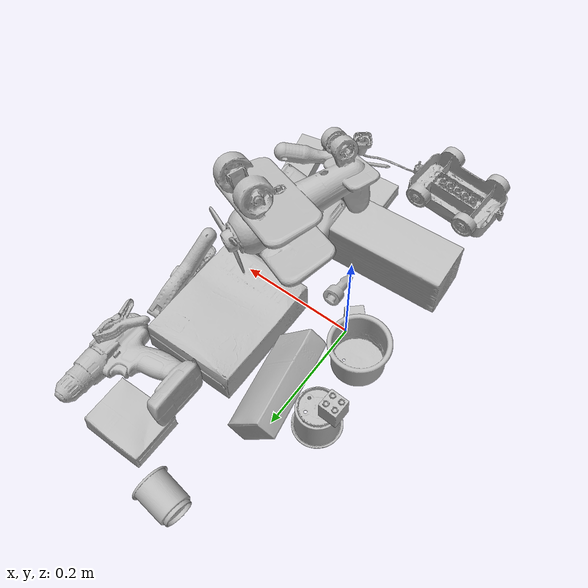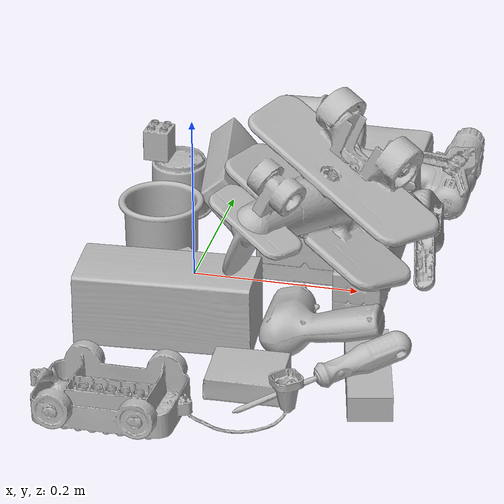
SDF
<sdf version="1.4">
  <world name="default">
    <light name="light1" type="point">
      <pose>0 0 1 0 0 0</pose>
      <diffuse>3 3 3 1</diffuse>
      <specular>3 3 3 1</specular>
    </light>
    <light name="light2" type="point">
      <pose>0 0.5 2 0 0 0</pose>
      <diffuse>1 1 1 1</diffuse>
      <specular>1 1 1 1</specular>
    </light>
    <light name="light3" type="point">
      <pose>0 0.5 2 0 0 0</pose>
      <diffuse>3 3 3 1</diffuse>
      <specular>3 3 3 1</specular>
    </light>
    <scene>
      <ambient>0.7 0.7 0.7</ambient>
    </scene>
    <model name="box21">
      <link name="link_box21">
        <collision name="default">
          <geometry>
            <mesh>
              <uri>model://cracker_box/collision_meshes/collision.obj</uri>
              <scale>1.0 1.0 1.0</scale>
            </mesh>
          </geometry>
          <surface>
            <friction>
              <ode>
                <mu>0.5</mu>
                <mu2>0.5</mu2>
              </ode>
            </friction>
          <contact>
        <ode>
            <max_vel>0</max_vel>
            <min_depth>0.0001</min_depth>
            <kp>1e8</kp>
        </ode>
    </contact></surface>
        </collision>
        <visual name="default">
          <geometry>
            <mesh>
              <uri>model://cracker_box/visual_meshes/visual.dae</uri>
              <scale>1.0 1.0 1.0</scale>
            </mesh>
          </geometry>
        </visual>
        <inertial>
          <mass>2.2869980335235596</mass>
          <pose>0.0009464151225984097 0.0002543425071053207 -0.0017029535956680775 -0.0003162075418873318 -0.011106487737663914 0.0025467956997025456</pose>
          <inertia>
            <ixx>0.005817102</ixx>
            <iyy>0.009605178</iyy>
            <izz>0.013707472</izz>
            <ixy>0</ixy>
            <ixz>0</ixz>
            <iyz>0</iyz>
          </inertia>
        </inertial>
      </link>
      <pose>0.1564667671918869 0.10583481937646866 0.03638385236263275 -0.014030705175937505 -0.005022031076776199 1.575477912374083</pose>
    </model>
    <model name="box22">
      <link name="link_box22">
        <collision name="default">
          <geometry>
            <mesh>
              <uri>model://pudding_box/collision_meshes/collision.obj</uri>
              <scale>1.0 1.0 1.0</scale>
            </mesh>
          </geometry>
          <surface>
            <friction>
              <ode>
                <mu>0.5</mu>
                <mu2>0.5</mu2>
              </ode>
            </friction>
          <contact>
        <ode>
            <max_vel>0</max_vel>
            <min_depth>0.0001</min_depth>
            <kp>1e8</kp>
        </ode>
    </contact></surface>
        </collision>
        <visual name="default">
          <geometry>
            <mesh>
              <uri>model://pudding_box/visual_meshes/visual.dae</uri>
              <scale>1.0 1.0 1.0</scale>
            </mesh>
          </geometry>
        </visual>
        <inertial>
          <mass>0.5370154976844788</mass>
          <pose>0.0004894821904599667 0.0008067885646596551 -0.0005188827635720372 0.005213101796859606 -0.006603800100757192 0.02007981956729938</pose>
          <inertia>
            <ixx>0.0006070684</ixx>
            <iyy>0.00040843996</iyy>
            <izz>0.00089649507</izz>
            <ixy>0</ixy>
            <ixz>0</ixz>
            <iyz>0</iyz>
          </inertia>
        </inertial>
      </link>
      <pose>0.16746918857097626 0.33233699202537537 0.0186605304479599 3.133983714169295 -0.026953440304749655 1.5698405303009404</pose>
    </model>
    <model name="box23">
      <link name="link_box23">
        <collision name="default">
          <geometry>
            <mesh>
              <uri>model://jenga/collision_meshes/collision.obj</uri>
              <scale>1.0 1.0 1.0</scale>
            </mesh>
          </geometry>
          <surface>
            <friction>
              <ode>
                <mu>0.5</mu>
                <mu2>0.5</mu2>
              </ode>
            </friction>
          <contact>
        <ode>
            <max_vel>0</max_vel>
            <min_depth>0.0001</min_depth>
            <kp>1e8</kp>
        </ode>
    </contact></surface>
        </collision>
        <visual name="default">
          <geometry>
            <mesh>
              <uri>model://jenga/visual_meshes/visual.dae</uri>
              <scale>1.0 1.0 1.0</scale>
            </mesh>
          </geometry>
        </visual>
        <inertial>
          <mass>0.17325031757354736</mass>
          <pose>-2.502855807051674e-07 -0.0001025000965455547 -4.0923401684267446e-05 0.0 -7.34215461761844e-07 0.0</pose>
          <inertia>
            <ixx>4.7942573e-05</ixx>
            <iyy>0.00032485754</iyy>
            <izz>0.00034681303</izz>
            <ixy>0</ixy>
            <ixz>0</ixz>
            <iyz>0</iyz>
          </inertia>
        </inertial>
      </link>
      <pose>0.25384414196014404 -0.2099345177412033 0.014999191276729107 3.340032215180407e-05 1.402759901933347e-07 1.795875358594236</pose>
    </model>
    <model name="cup1">
      <link name="link_cup1">
        <collision name="default">
          <geometry>
            <mesh>
              <uri>model://c_cups/collision_meshes/collision.obj</uri>
              <scale>1.0 1.0 1.0</scale>
            </mesh>
          </geometry>
          <surface>
            <friction>
              <ode>
                <mu>0.5</mu>
                <mu2>0.5</mu2>
              </ode>
            </friction>
          <contact>
        <ode>
            <max_vel>0</max_vel>
            <min_depth>0.0001</min_depth>
            <kp>1e8</kp>
        </ode>
    </contact></surface>
        </collision>
        <visual name="default">
          <geometry>
            <mesh>
              <uri>model://c_cups/visual_meshes/visual.dae</uri>
              <scale>1.0 1.0 1.0</scale>
            </mesh>
          </geometry>
        </visual>
        <inertial>
          <mass>0.033937059342861176</mass>
          <pose>0.0007237257086671889 0.002015391131862998 -0.0012750985333696008 0.3021568203324006 0.0134615240317058 -0.08771816491093205</pose>
          <inertia>
            <ixx>2.5238536e-05</ixx>
            <iyy>2.4792533e-05</iyy>
            <izz>2.2320162e-05</izz>
            <ixy>0</ixy>
            <ixz>0</ixz>
            <iyz>0</iyz>
          </inertia>
        </inertial>
      </link>
      <pose>0.04517987743020058 0.39327919483184814 0.029846908524632454 -1.3343130877825278 1.2430824026292884 -1.486493781329253</pose>
    </model>
    <model name="cup2">
      <link name="link_cup2">
        <collision name="default">
          <geometry>
            <mesh>
              <uri>model://f_cups/collision_meshes/collision.obj</uri>
              <scale>1.0 1.0 1.0</scale>
            </mesh>
          </geometry>
          <surface>
            <friction>
              <ode>
                <mu>0.5</mu>
                <mu2>0.5</mu2>
              </ode>
            </friction>
          <contact>
        <ode>
            <max_vel>0</max_vel>
            <min_depth>0.0001</min_depth>
            <kp>1e8</kp>
        </ode>
    </contact></surface>
        </collision>
        <visual name="default">
          <geometry>
            <mesh>
              <uri>model://f_cups/visual_meshes/visual.dae</uri>
              <scale>1.0 1.0 1.0</scale>
            </mesh>
          </geometry>
        </visual>
        <inertial>
          <mass>0.10278050601482391</mass>
          <pose>-0.003171466989442706 -0.0006240068469196558 -0.003655537962913513 0.7862283183637603 -0.2607933822369466 -0.1823733550036739</pose>
          <inertia>
            <ixx>9.661645e-05</ixx>
            <iyy>0.00010135175</iyy>
            <izz>0.000105510015</izz>
            <ixy>0</ixy>
            <ixz>0</ixz>
            <iyz>0</iyz>
          </inertia>
        </inertial>
      </link>
      <pose>-0.05859759449958801 0.1605260819196701 0.03630407527089119 -3.141587716432771 -5.111863954857513e-06 -0.5488297417677207</pose>
    </model>
    <model name="box11">
      <link name="link_box11">
        <collision name="default">
          <geometry>
            <mesh>
              <uri>model://wood_block/collision_meshes/collision.obj</uri>
              <scale>1.0 1.0 1.0</scale>
            </mesh>
          </geometry>
          <surface>
            <friction>
              <ode>
                <mu>0.5</mu>
                <mu2>0.5</mu2>
              </ode>
            </friction>
          <contact>
        <ode>
            <max_vel>0</max_vel>
            <min_depth>0.0001</min_depth>
            <kp>1e8</kp>
        </ode>
    </contact></surface>
        </collision>
        <visual name="default">
          <geometry>
            <mesh>
              <uri>model://wood_block/visual_meshes/visual.dae</uri>
              <scale>1.0 1.0 1.0</scale>
            </mesh>
          </geometry>
        </visual>
        <inertial>
          <mass>2.321592330932617</mass>
          <pose>-5.813315056002466e-06 -0.000570809468626976 0.0002640858292579651 -0.052209755297172346 -0.005192694580027673 -0.006861376555374886</pose>
          <inertia>
            <ixx>0.0031066423</ixx>
            <iyy>0.009813884</iyy>
            <izz>0.009777175</izz>
            <ixy>0</ixy>
            <ixz>0</ixz>
            <iyz>0</iyz>
          </inertia>
        </inertial>
      </link>
      <pose>0.0075539411045610905 -0.14851714670658112 0.04525870084762573 -0.005218845671492192 0.005713812288953371 -3.0756242286085835</pose>
    </model>
    <model name="box12">
      <link name="link_box12">
        <collision name="default">
          <geometry>
            <mesh>
              <uri>model://gelatin_box/collision_meshes/collision.obj</uri>
              <scale>1.0 1.0 1.0</scale>
            </mesh>
          </geometry>
          <surface>
            <friction>
              <ode>
                <mu>0.5</mu>
                <mu2>0.5</mu2>
              </ode>
            </friction>
          <contact>
        <ode>
            <max_vel>0</max_vel>
            <min_depth>0.0001</min_depth>
            <kp>1e8</kp>
        </ode>
    </contact></surface>
        </collision>
        <visual name="default">
          <geometry>
            <mesh>
              <uri>model://gelatin_box/visual_meshes/visual.dae</uri>
              <scale>1.0 1.0 1.0</scale>
            </mesh>
          </geometry>
        </visual>
        <inertial>
          <mass>0.2263340801000595</mass>
          <pose>0.0004319618456065655 0.00011156871914863586 -0.00036403207923285663 -0.001050371981036731 -0.004755818689382226 0.016440561334450605</pose>
          <inertia>
            <ixx>0.00015977336</ixx>
            <iyy>0.00011412529</iyy>
            <izz>0.00024321067</izz>
            <ixy>0</ixy>
            <ixz>0</ixz>
            <iyz>0</iyz>
          </inertia>
        </inertial>
      </link>
      <pose>0.12393883615732193 -0.24446819722652435 0.014580637216567993 -3.1258657403545302 -0.025719264905075825 1.638843017174514</pose>
    </model>
    <model name="box13">
      <link name="link_box13">
        <collision name="default">
          <geometry>
            <mesh>
              <uri>model://sugar_box/collision_meshes/collision.obj</uri>
              <scale>1.0 1.0 1.0</scale>
            </mesh>
          </geometry>
          <surface>
            <friction>
              <ode>
                <mu>0.5</mu>
                <mu2>0.5</mu2>
              </ode>
            </friction>
          <contact>
        <ode>
            <max_vel>0</max_vel>
            <min_depth>0.0001</min_depth>
            <kp>1e8</kp>
        </ode>
    </contact></surface>
        </collision>
        <visual name="default">
          <geometry>
            <mesh>
              <uri>model://sugar_box/visual_meshes/visual.dae</uri>
              <scale>1.0 1.0 1.0</scale>
            </mesh>
          </geometry>
        </visual>
        <inertial>
          <mass>0.4976349174976349</mass>
          <pose>0.0010343727190047503 3.849109634757042e-05 -0.00036364805418998003 -0.0004046263004245651 0.001050663405794887 0.002615379021776999</pose>
          <inertia>
            <ixx>0.0004146281</ixx>
            <iyy>0.0013401629</iyy>
            <izz>0.0016043353</izz>
            <ixy>0</ixy>
            <ixz>0</ixz>
            <iyz>0</iyz>
          </inertia>
        </inertial>
      </link>
      <pose>0.017579248175024986 0.15924328565597534 0.04650406539440155 -2.2498091674876113 -0.0031941263958357303 1.7407122539075524</pose>
    </model>
    <model name="box14">
      <link name="link_box14">
        <collision name="default">
          <geometry>
            <mesh>
              <uri>model://rubiks_cube/collision_meshes/collision.obj</uri>
              <scale>1.0 1.0 1.0</scale>
            </mesh>
          </geometry>
          <surface>
            <friction>
              <ode>
                <mu>0.5</mu>
                <mu2>0.5</mu2>
              </ode>
            </friction>
          <contact>
        <ode>
            <max_vel>0</max_vel>
            <min_depth>0.0001</min_depth>
            <kp>1e8</kp>
        </ode>
    </contact></surface>
        </collision>
        <visual name="default">
          <geometry>
            <mesh>
              <uri>model://rubiks_cube/visual_meshes/visual.dae</uri>
              <scale>1.0 1.0 1.0</scale>
            </mesh>
          </geometry>
        </visual>
        <inertial>
          <mass>0.2531126141548157</mass>
          <pose>2.6721041649580002e-05 5.2569666877388954e-05 -7.264316536748083e-06 -0.05467274129792389 -0.0981396008906979 -0.0344563195746163</pose>
          <inertia>
            <ixx>0.00013986173</ixx>
            <iyy>0.00013920949</iyy>
            <izz>0.00014102072</izz>
            <ixy>0</ixy>
            <ixz>0</ixz>
            <iyz>0</iyz>
          </inertia>
        </inertial>
      </link>
      <pose>0.21053431928157806 -0.037035901099443436 0.029861850664019585 -1.5486059136478403 0.03620344720986205 0.00660225383305485</pose>
    </model>
    <model name="cup15">
      <link name="link_cup15">
        <collision name="default">
          <geometry>
            <mesh>
              <uri>model://j_cups/collision_meshes/collision.obj</uri>
              <scale>1.0 1.0 1.0</scale>
            </mesh>
          </geometry>
          <surface>
            <friction>
              <ode>
                <mu>0.5</mu>
                <mu2>0.5</mu2>
              </ode>
            </friction>
          <contact>
        <ode>
            <max_vel>0</max_vel>
            <min_depth>0.0001</min_depth>
            <kp>1e8</kp>
        </ode>
    </contact></surface>
        </collision>
        <visual name="default">
          <geometry>
            <mesh>
              <uri>model://j_cups/visual_meshes/visual.dae</uri>
              <scale>1.0 1.0 1.0</scale>
            </mesh>
          </geometry>
        </visual>
        <inertial>
          <mass>0.12765173614025116</mass>
          <pose>0.0006164864171296358 0.0005398980574682355 -0.0013479006011039019 0.030303852295551513 0.03757989298695449 0.4386938541947324</pose>
          <inertia>
            <ixx>0.00018743309</ixx>
            <iyy>0.00018938213</iyy>
            <izz>0.0002160715</izz>
            <ixy>0</ixy>
            <ixz>0</ixz>
            <iyz>0</iyz>
          </inertia>
        </inertial>
      </link>
      <pose>-0.049620360136032104 0.03814562037587166 0.037988997995853424 3.078680348277453e-08 6.640872855422641e-07 -2.9059256679043175</pose>
    </model>
    <model name="toy1">
      <link name="link_toy1">
        <collision name="default">
          <geometry>
            <mesh>
              <uri>model://f_lego_duplo/collision_meshes/collision.obj</uri>
              <scale>1.0 1.0 1.0</scale>
            </mesh>
          </geometry>
          <surface>
            <friction>
              <ode>
                <mu>0.5</mu>
                <mu2>0.5</mu2>
              </ode>
            </friction>
          <contact>
        <ode>
            <max_vel>0</max_vel>
            <min_depth>0.0001</min_depth>
            <kp>1e8</kp>
        </ode>
    </contact></surface>
        </collision>
        <visual name="default">
          <geometry>
            <mesh>
              <uri>model://f_lego_duplo/visual_meshes/visual.dae</uri>
              <scale>1.0 1.0 1.0</scale>
            </mesh>
          </geometry>
        </visual>
        <inertial>
          <mass>0.04013235494494438</mass>
          <pose>2.369376306887716e-05 0.00013393163681030273 0.0018837876850739121 0.029838734112773806 -0.014424842824784668 -0.6756708500035773</pose>
          <inertia>
            <ixx>8.480189e-06</ixx>
            <iyy>8.555736e-06</iyy>
            <izz>7.361164e-06</izz>
            <ixy>0</ixy>
            <ixz>0</ixz>
            <iyz>0</iyz>
          </inertia>
        </inertial>
      </link>
      <pose>-0.08364942669868469 0.15695564448833466 0.09390091150999069 -0.003120208406335926 0.015249708082810462 -0.035903217161613085</pose>
    </model>
    <model name="toy2">
      <link name="link_toy2">
        <collision name="default">
          <geometry>
            <mesh>
              <uri>model://e_toy_airplane/collision_meshes/collision.obj</uri>
              <scale>1.0 1.0 1.0</scale>
            </mesh>
          </geometry>
          <surface>
            <friction>
              <ode>
                <mu>0.5</mu>
                <mu2>0.5</mu2>
              </ode>
            </friction>
          <contact>
        <ode>
            <max_vel>0</max_vel>
            <min_depth>0.0001</min_depth>
            <kp>1e8</kp>
        </ode>
    </contact></surface>
        </collision>
        <visual name="default">
          <geometry>
            <mesh>
              <uri>model://e_toy_airplane/visual_meshes/visual.dae</uri>
              <scale>1.0 1.0 1.0</scale>
            </mesh>
          </geometry>
        </visual>
        <inertial>
          <mass>0.030105752870440483</mass>
          <pose>0.00011740480840671808 -2.248285454697907e-05 -0.011187204159796238 0.0055184715057391125 0.009228317867647443 0.150413097465581</pose>
          <inertia>
            <ixx>9.18862e-06</ixx>
            <iyy>9.094625e-06</iyy>
            <izz>2.761542e-06</izz>
            <ixy>0</ixy>
            <ixz>0</ixz>
            <iyz>0</iyz>
          </inertia>
        </inertial>
      </link>
      <pose>0.051230814307928085 -0.05788569524884224 0.010332437232136726 2.4256579755799503 -1.1977899300562582 -0.7614146671320627</pose>
    </model>
    <model name="toy3">
      <link name="link_toy3">
        <collision name="default">
          <geometry>
            <mesh>
              <uri>model://g_lego_duplo/collision_meshes/collision.obj</uri>
              <scale>1.0 1.0 1.0</scale>
            </mesh>
          </geometry>
          <surface>
            <friction>
              <ode>
                <mu>0.5</mu>
                <mu2>0.5</mu2>
              </ode>
            </friction>
          <contact>
        <ode>
            <max_vel>0</max_vel>
            <min_depth>0.0001</min_depth>
            <kp>1e8</kp>
        </ode>
    </contact></surface>
        </collision>
        <visual name="default">
          <geometry>
            <mesh>
              <uri>model://g_lego_duplo/visual_meshes/visual.dae</uri>
              <scale>1.0 1.0 1.0</scale>
            </mesh>
          </geometry>
        </visual>
        <inertial>
          <mass>0.4529305100440979</mass>
          <pose>-0.050047703087329865 0.0017554633086547256 0.0038806775119155645 0.010963008114131517 0.03810824387856379 -0.09653032518797504</pose>
          <inertia>
            <ixx>0.00065630145</ixx>
            <iyy>0.0019842102</iyy>
            <izz>0.0024823209</izz>
            <ixy>0</ixy>
            <ixz>0</ixz>
            <iyz>0</iyz>
          </inertia>
        </inertial>
      </link>
      <pose>0.05241836607456207 -0.33198410272598267 0.02762901782989502 -3.1415921627632697 -0.03027968800774645 -0.044163572978278075</pose>
    </model>
    <model name="toy4">
      <link name="link_toy4">
        <collision name="default">
          <geometry>
            <mesh>
              <uri>model://b_lego_duplo/collision_meshes/collision.obj</uri>
              <scale>1.0 1.0 1.0</scale>
            </mesh>
          </geometry>
          <surface>
            <friction>
              <ode>
                <mu>0.5</mu>
                <mu2>0.5</mu2>
              </ode>
            </friction>
          <contact>
        <ode>
            <max_vel>0</max_vel>
            <min_depth>0.0001</min_depth>
            <kp>1e8</kp>
        </ode>
    </contact></surface>
        </collision>
        <visual name="default">
          <geometry>
            <mesh>
              <uri>model://b_lego_duplo/visual_meshes/visual.dae</uri>
              <scale>1.0 1.0 1.0</scale>
            </mesh>
          </geometry>
        </visual>
        <inertial>
          <mass>0.018499748781323433</mass>
          <pose>-0.00011053003981942311 -9.15247255761642e-06 0.001929429592564702 -0.037494549291744686 -0.026354734626349716 0.4518828938821803</pose>
          <inertia>
            <ixx>3.786112e-06</ixx>
            <iyy>3.8115643e-06</iyy>
            <izz>3.3733036e-06</izz>
            <ixy>0</ixy>
            <ixz>0</ixz>
            <iyz>0</iyz>
          </inertia>
        </inertial>
      </link>
      <pose>-0.00788091216236353 -0.015327315777540207 0.016152342781424522 -3.121190942516091 1.562459938796298 -0.7975842715516517</pose>
    </model>
    <model name="toy5">
      <link name="link_toy5">
        <collision name="default">
          <geometry>
            <mesh>
              <uri>model://b_toy_airplane/collision_meshes/collision.obj</uri>
              <scale>1.0 1.0 1.0</scale>
            </mesh>
          </geometry>
          <surface>
            <friction>
              <ode>
                <mu>0.5</mu>
                <mu2>0.5</mu2>
              </ode>
            </friction>
          <contact>
        <ode>
            <max_vel>0</max_vel>
            <min_depth>0.0001</min_depth>
            <kp>1e8</kp>
        </ode>
    </contact></surface>
        </collision>
        <visual name="default">
          <geometry>
            <mesh>
              <uri>model://b_toy_airplane/visual_meshes/visual.dae</uri>
              <scale>1.0 1.0 1.0</scale>
            </mesh>
          </geometry>
        </visual>
        <inertial>
          <mass>0.38904744386672974</mass>
          <pose>0.00508136348798871 0.004015582147985697 0.00954306498169899 -0.040018071915393034 -0.04022181905785318 -0.5601502897874057</pose>
          <inertia>
            <ixx>0.00072227366</ixx>
            <iyy>0.0002886998</iyy>
            <izz>0.0008985803</izz>
            <ixy>0</ixy>
            <ixz>0</ixz>
            <iyz>0</iyz>
          </inertia>
        </inertial>
      </link>
      <pose>0.1750412881374359 -0.14718030393123627 0.02593209035694599 -0.18637363964253598 0.07112105221194578 1.6041750360158353</pose>
    </model>
    <model name="toy6">
      <link name="link_toy6">
        <collision name="default">
          <geometry>
            <mesh>
              <uri>model://a_toy_airplane/collision_meshes/collision.obj</uri>
              <scale>1.0 1.0 1.0</scale>
            </mesh>
          </geometry>
          <surface>
            <friction>
              <ode>
                <mu>0.5</mu>
                <mu2>0.5</mu2>
              </ode>
            </friction>
          <contact>
        <ode>
            <max_vel>0</max_vel>
            <min_depth>0.0001</min_depth>
            <kp>1e8</kp>
        </ode>
    </contact></surface>
        </collision>
        <visual name="default">
          <geometry>
            <mesh>
              <uri>model://a_toy_airplane/visual_meshes/visual.dae</uri>
              <scale>1.0 1.0 1.0</scale>
            </mesh>
          </geometry>
        </visual>
        <inertial>
          <mass>2.344027519226074</mass>
          <pose>0.025165099650621414 -0.003707322059199214 -0.0011962436838075519 -0.012016950381748406 -0.14663507119063698 0.004149124939747771</pose>
          <inertia>
            <ixx>0.008512287</ixx>
            <iyy>0.012404123</iyy>
            <izz>0.014523712</izz>
            <ixy>0</ixy>
            <ixz>0</ixz>
            <iyz>0</iyz>
          </inertia>
        </inertial>
      </link>
      <pose>0.15771621465682983 -0.07432274520397186 0.14889322221279144 -2.736546981273456 -0.034695352032682314 1.0844631910535814</pose>
    </model>
    <model name="hardware1">
      <link name="link_hardware1">
        <collision name="default">
          <geometry>
            <mesh>
              <uri>model://power_drill/collision_meshes/collision.obj</uri>
              <scale>1.0 1.0 1.0</scale>
            </mesh>
          </geometry>
          <surface>
            <friction>
              <ode>
                <mu>0.5</mu>
                <mu2>0.5</mu2>
              </ode>
            </friction>
          <contact>
        <ode>
            <max_vel>0</max_vel>
            <min_depth>0.0001</min_depth>
            <kp>1e8</kp>
        </ode>
    </contact></surface>
        </collision>
        <visual name="default">
          <geometry>
            <mesh>
              <uri>model://power_drill/visual_meshes/visual.dae</uri>
              <scale>1.0 1.0 1.0</scale>
            </mesh>
          </geometry>
        </visual>
        <inertial>
          <mass>0.3504050374031067</mass>
          <pose>-0.014780547469854355 0.014369429089128971 0.0012414171360433102 0.0046091621872236125 0.004073022304059966 -0.18362696816981472</pose>
          <inertia>
            <ixx>0.001427917</ixx>
            <iyy>0.0005618108</iyy>
            <izz>0.0018858167</izz>
            <ixy>0</ixy>
            <ixz>0</ixz>
            <iyz>0</iyz>
          </inertia>
        </inertial>
      </link>
      <pose>0.20722033083438873 0.2821720838546753 0.04529188945889473 -2.9364178182908156 -0.08269910067024118 1.5696632907360328</pose>
    </model>
    <model name="hardware2">
      <link name="link_hardware2">
        <collision name="default">
          <geometry>
            <mesh>
              <uri>model://phillips_screwdriver/collision_meshes/collision.obj</uri>
              <scale>1.0 1.0 1.0</scale>
            </mesh>
          </geometry>
          <surface>
            <friction>
              <ode>
                <mu>0.5</mu>
                <mu2>0.5</mu2>
              </ode>
            </friction>
          <contact>
        <ode>
            <max_vel>0</max_vel>
            <min_depth>0.0001</min_depth>
            <kp>1e8</kp>
        </ode>
    </contact></surface>
        </collision>
        <visual name="default">
          <geometry>
            <mesh>
              <uri>model://phillips_screwdriver/visual_meshes/visual.dae</uri>
              <scale>1.0 1.0 1.0</scale>
            </mesh>
          </geometry>
        </visual>
        <inertial>
          <mass>0.06613585352897644</mass>
          <pose>-0.04777182638645172 0.0010362302418798208 -0.000455554953077808 -0.157256923583716 0.005850995849984215 -0.0021567369270283215</pose>
          <inertia>
            <ixx>7.770284e-06</ixx>
            <iyy>9.742579e-05</iyy>
            <izz>9.7508564e-05</izz>
            <ixy>0</ixy>
            <ixz>0</ixz>
            <iyz>0</iyz>
          </inertia>
        </inertial>
      </link>
      <pose>0.2144465297460556 -0.2578679025173187 0.035628851503133774 2.996441128613818 0.2021080208209251 -2.519039881835442</pose>
    </model>
    <model name="hardware3">
      <link name="link_hardware3">
        <collision name="default">
          <geometry>
            <mesh>
              <uri>model://large_clamp/collision_meshes/collision.obj</uri>
              <scale>1.0 1.0 1.0</scale>
            </mesh>
          </geometry>
          <surface>
            <friction>
              <ode>
                <mu>0.5</mu>
                <mu2>0.5</mu2>
              </ode>
            </friction>
          <contact>
        <ode>
            <max_vel>0</max_vel>
            <min_depth>0.0001</min_depth>
            <kp>1e8</kp>
        </ode>
    </contact></surface>
        </collision>
        <visual name="default">
          <geometry>
            <mesh>
              <uri>model://large_clamp/visual_meshes/visual.dae</uri>
              <scale>1.0 1.0 1.0</scale>
            </mesh>
          </geometry>
        </visual>
        <inertial>
          <mass>0.0812491774559021</mass>
          <pose>0.00636935792863369 0.00035856812610290945 -0.0001839803153416142 -0.0021330695247891995 0.009671592144941876 0.026633191629386817</pose>
          <inertia>
            <ixx>7.1684015e-05</ixx>
            <iyy>0.00013613176</iyy>
            <izz>0.00019693196</izz>
            <ixy>0</ixy>
            <ixz>0</ixz>
            <iyz>0</iyz>
          </inertia>
        </inertial>
      </link>
      <pose>0.2604619264602661 0.09802727401256561 0.04421113431453705 1.2967655168059657 0.22737702054865513 1.5840834925809828</pose>
    </model>
    <model name="hardware4">
      <link name="link_hardware4">
        <collision name="default">
          <geometry>
            <mesh>
              <uri>model://medium_clamp/collision_meshes/collision.obj</uri>
              <scale>1.0 1.0 1.0</scale>
            </mesh>
          </geometry>
          <surface>
            <friction>
              <ode>
                <mu>0.5</mu>
                <mu2>0.5</mu2>
              </ode>
            </friction>
          <contact>
        <ode>
            <max_vel>0</max_vel>
            <min_depth>0.0001</min_depth>
            <kp>1e8</kp>
        </ode>
    </contact></surface>
        </collision>
        <visual name="default">
          <geometry>
            <mesh>
              <uri>model://medium_clamp/visual_meshes/visual.dae</uri>
              <scale>1.0 1.0 1.0</scale>
            </mesh>
          </geometry>
        </visual>
        <inertial>
          <mass>0.04165364429354668</mass>
          <pose>0.0053909956477582455 0.00039532381924800575 -0.0001222159044118598 -0.0012269202016338824 0.0025845009837354585 0.038207769727488725</pose>
          <inertia>
            <ixx>1.134795e-05</ixx>
            <iyy>1.6514476e-05</iyy>
            <izz>2.5437248e-05</izz>
            <ixy>0</ixy>
            <ixz>0</ixz>
            <iyz>0</iyz>
          </inertia>
        </inertial>
      </link>
      <pose>0.2753225564956665 0.22911299765110016 0.06414581090211868 0.49494650999133644 0.05429831307288903 1.2769611363089408</pose>
    </model>
  <physics type="ode">
      <max_contacts>50</max_contacts>
      <ode>
        <solver>
          <type>quick</type>
          <iters>75</iters>
        </solver>
        <constraints>
          <contact_max_correcting_vel>0</contact_max_correcting_vel>
          <contact_surface_layer>0</contact_surface_layer>
        </constraints>
      </ode>
    </physics></world>
</sdf>
